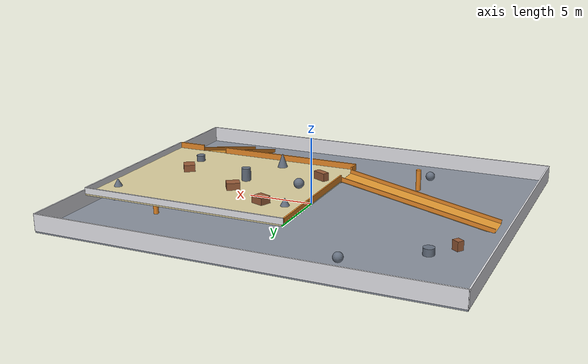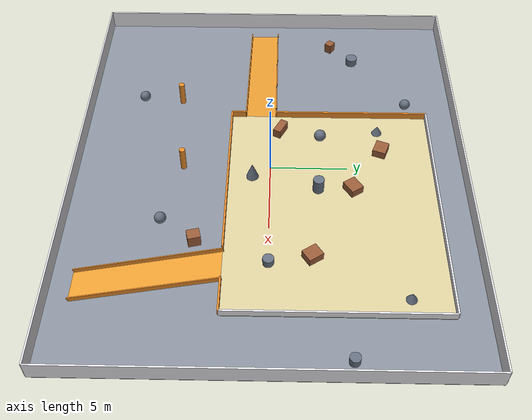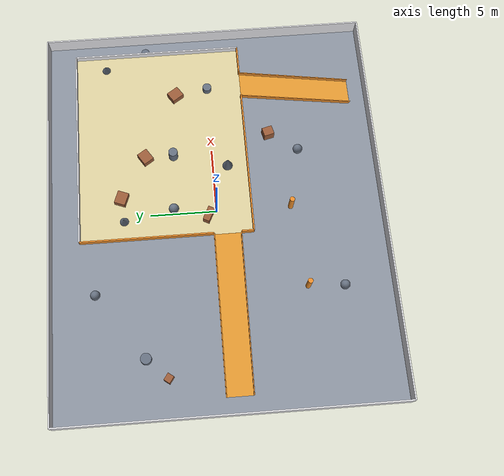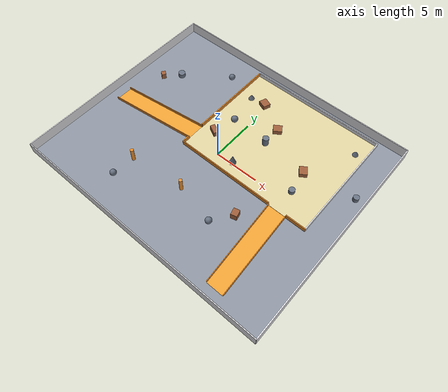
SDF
<?xml version='1.0' encoding='utf-8'?>
<sdf version="1.7">
  <world name="floor_5">
    <gravity>0 0 -9.8</gravity>
    <plugin name="gazebo_ros_state" filename="libgazebo_ros_state.so">
      <ros>
        <namespace>/gazebo</namespace>
      </ros>
    </plugin>
    <physics name="ode_physics" type="ode">
      <max_step_size>0.001</max_step_size>
      <real_time_factor>1</real_time_factor>
      <real_time_update_rate>1000</real_time_update_rate>
      <ode>
        <solver>
          <type>quick</type>
          <iters>150</iters>
          <sor>1.3</sor>
        </solver>
        <constraints>
          <cfm>0</cfm>
          <erp>0.2</erp>
          <contact_max_correcting_vel>0.2</contact_max_correcting_vel>
          <contact_surface_layer>0.001</contact_surface_layer>
        </constraints>
      </ode>
    </physics>
    <light name="sun" type="directional">
      <pose>0 0 28 0 0 0</pose>
      <diffuse>0.92 0.91 0.88 1</diffuse>
      <specular>0.18 0.18 0.16 1</specular>
      <direction>-0.35 -0.28 -0.9</direction>
      <cast_shadows>true</cast_shadows>
    </light>
    <light name="fill" type="point">
      <pose>0 0 4.5 0 0 0</pose>
      <diffuse>0.45 0.48 0.52 1</diffuse>
      <specular>0.02 0.02 0.02 1</specular>
      <cast_shadows>false</cast_shadows>
      <attenuation>
        <range>80</range>
        <constant>0.5</constant>
        <linear>0.02</linear>
      </attenuation>
    </light>
    <scene>
      <ambient>0.48 0.49 0.53 1</ambient>
      <background>0.72 0.77 0.84 1</background>
    </scene>
    <gui fullscreen="false">
      <camera name="user_camera">
        <pose>21 -22.5 25.5 0 0.65 2.2</pose>
        <view_controller>orbit</view_controller>
      </camera>
    </gui>
    <model name="floor_5_structure">
      <static>true</static>
      <link name="structure">
        <collision name="lower_collision">
          <pose>0 0 -0.0625 0 0 0</pose>
          <geometry>
            <box>
              <size>30 25 0.125</size>
            </box>
          </geometry>
          <max_contacts>40</max_contacts>
          <surface>
            <friction>
              <ode>
                <mu>2</mu>
                <mu2>2</mu2>
              </ode>
            </friction>
            <contact>
              <ode>
                <kp>1e7</kp>
                <kd>1000</kd>
                <max_vel>0.1</max_vel>
                <min_depth>0.001</min_depth>
              </ode>
            </contact>
          </surface>
        </collision>
        <visual name="lower_visual">
          <pose>0 0 -0.0625 0 0 0</pose>
          <geometry>
            <box>
              <size>30 25 0.125</size>
            </box>
          </geometry>
          <material>
            <ambient>0.54 0.57 0.62 1</ambient>
            <diffuse>0.54 0.57 0.62 1</diffuse>
          </material>
        </visual>
        <collision name="upper_collision">
          <pose>5 3.75 2.1875 0 0 0</pose>
          <geometry>
            <box>
              <size>15 12.5 0.125</size>
            </box>
          </geometry>
          <max_contacts>40</max_contacts>
          <surface>
            <friction>
              <ode>
                <mu>2</mu>
                <mu2>2</mu2>
              </ode>
            </friction>
            <contact>
              <ode>
                <kp>1e7</kp>
                <kd>1000</kd>
                <max_vel>0.1</max_vel>
                <min_depth>0.001</min_depth>
              </ode>
            </contact>
          </surface>
        </collision>
        <visual name="upper_visual">
          <pose>5 3.75 2.1875 0 0 0</pose>
          <geometry>
            <box>
              <size>15 12.5 0.125</size>
            </box>
          </geometry>
          <material>
            <ambient>0.86 0.81 0.62 1</ambient>
            <diffuse>0.86 0.81 0.62 1</diffuse>
          </material>
        </visual>
        <collision name="west_ramp_collision">
          <pose>-8.09837286 -0.625 1.06983647 0 -0.196862795 0</pose>
          <geometry>
            <box>
              <size>11.5034387 1.875 0.1125</size>
            </box>
          </geometry>
          <max_contacts>40</max_contacts>
          <surface>
            <friction>
              <ode>
                <mu>2</mu>
                <mu2>2</mu2>
              </ode>
            </friction>
            <contact>
              <ode>
                <kp>1e7</kp>
                <kd>1000</kd>
                <max_vel>0.1</max_vel>
                <min_depth>0.001</min_depth>
              </ode>
            </contact>
          </surface>
        </collision>
        <visual name="west_ramp_visual">
          <pose>-8.09837286 -0.625 1.06983647 0 -0.196862795 0</pose>
          <geometry>
            <box>
              <size>11.5034387 1.875 0.1125</size>
            </box>
          </geometry>
          <material>
            <ambient>0.92 0.62 0.20 1</ambient>
            <diffuse>0.92 0.62 0.20 1</diffuse>
          </material>
        </visual>
        <collision name="west_ramp_rail_-1_collision">
          <pose>-8.09837286 -1.6 1.24483647 0 -0.196862795 0</pose>
          <geometry>
            <box>
              <size>11.5034387 0.0625 0.3125</size>
            </box>
          </geometry>
          <max_contacts>40</max_contacts>
          <surface>
            <friction>
              <ode>
                <mu>2</mu>
                <mu2>2</mu2>
              </ode>
            </friction>
            <contact>
              <ode>
                <kp>1e7</kp>
                <kd>1000</kd>
                <max_vel>0.1</max_vel>
                <min_depth>0.001</min_depth>
              </ode>
            </contact>
          </surface>
        </collision>
        <visual name="west_ramp_rail_-1_visual">
          <pose>-8.09837286 -1.6 1.24483647 0 -0.196862795 0</pose>
          <geometry>
            <box>
              <size>11.5034387 0.0625 0.3125</size>
            </box>
          </geometry>
          <material>
            <ambient>0.92 0.55 0.16 1</ambient>
            <diffuse>0.92 0.55 0.16 1</diffuse>
          </material>
        </visual>
        <collision name="west_ramp_rail_1_collision">
          <pose>-8.09837286 0.35 1.24483647 0 -0.196862795 0</pose>
          <geometry>
            <box>
              <size>11.5034387 0.0625 0.3125</size>
            </box>
          </geometry>
          <max_contacts>40</max_contacts>
          <surface>
            <friction>
              <ode>
                <mu>2</mu>
                <mu2>2</mu2>
              </ode>
            </friction>
            <contact>
              <ode>
                <kp>1e7</kp>
                <kd>1000</kd>
                <max_vel>0.1</max_vel>
                <min_depth>0.001</min_depth>
              </ode>
            </contact>
          </surface>
        </collision>
        <visual name="west_ramp_rail_1_visual">
          <pose>-8.09837286 0.35 1.24483647 0 -0.196862795 0</pose>
          <geometry>
            <box>
              <size>11.5034387 0.0625 0.3125</size>
            </box>
          </geometry>
          <material>
            <ambient>0.92 0.55 0.16 1</ambient>
            <diffuse>0.92 0.55 0.16 1</diffuse>
          </material>
        </visual>
        <collision name="south_ramp_collision">
          <pose>9.375 -6.84541322 1.07051027 0 -0.250831439 1.57079633</pose>
          <geometry>
            <box>
              <size>9.06492424 1.875 0.1125</size>
            </box>
          </geometry>
          <max_contacts>40</max_contacts>
          <surface>
            <friction>
              <ode>
                <mu>2</mu>
                <mu2>2</mu2>
              </ode>
            </friction>
            <contact>
              <ode>
                <kp>1e7</kp>
                <kd>1000</kd>
                <max_vel>0.1</max_vel>
                <min_depth>0.001</min_depth>
              </ode>
            </contact>
          </surface>
        </collision>
        <visual name="south_ramp_visual">
          <pose>9.375 -6.84541322 1.07051027 0 -0.250831439 1.57079633</pose>
          <geometry>
            <box>
              <size>9.06492424 1.875 0.1125</size>
            </box>
          </geometry>
          <material>
            <ambient>0.92 0.62 0.20 1</ambient>
            <diffuse>0.92 0.62 0.20 1</diffuse>
          </material>
        </visual>
        <collision name="south_ramp_rail_-1_collision">
          <pose>10.35 -6.84541322 1.24551027 0 -0.250831439 1.57079633</pose>
          <geometry>
            <box>
              <size>9.06492424 0.0625 0.3125</size>
            </box>
          </geometry>
          <max_contacts>40</max_contacts>
          <surface>
            <friction>
              <ode>
                <mu>2</mu>
                <mu2>2</mu2>
              </ode>
            </friction>
            <contact>
              <ode>
                <kp>1e7</kp>
                <kd>1000</kd>
                <max_vel>0.1</max_vel>
                <min_depth>0.001</min_depth>
              </ode>
            </contact>
          </surface>
        </collision>
        <visual name="south_ramp_rail_-1_visual">
          <pose>10.35 -6.84541322 1.24551027 0 -0.250831439 1.57079633</pose>
          <geometry>
            <box>
              <size>9.06492424 0.0625 0.3125</size>
            </box>
          </geometry>
          <material>
            <ambient>0.92 0.55 0.16 1</ambient>
            <diffuse>0.92 0.55 0.16 1</diffuse>
          </material>
        </visual>
        <collision name="south_ramp_rail_1_collision">
          <pose>8.4 -6.84541322 1.24551027 0 -0.250831439 1.57079633</pose>
          <geometry>
            <box>
              <size>9.06492424 0.0625 0.3125</size>
            </box>
          </geometry>
          <max_contacts>40</max_contacts>
          <surface>
            <friction>
              <ode>
                <mu>2</mu>
                <mu2>2</mu2>
              </ode>
            </friction>
            <contact>
              <ode>
                <kp>1e7</kp>
                <kd>1000</kd>
                <max_vel>0.1</max_vel>
                <min_depth>0.001</min_depth>
              </ode>
            </contact>
          </surface>
        </collision>
        <visual name="south_ramp_rail_1_visual">
          <pose>8.4 -6.84541322 1.24551027 0 -0.250831439 1.57079633</pose>
          <geometry>
            <box>
              <size>9.06492424 0.0625 0.3125</size>
            </box>
          </geometry>
          <material>
            <ambient>0.92 0.55 0.16 1</ambient>
            <diffuse>0.92 0.55 0.16 1</diffuse>
          </material>
        </visual>
        <collision name="lower_pillar_0_collision">
          <pose>-6.25 -6.25 0.8125 0 0 0</pose>
          <geometry>
            <cylinder>
              <radius>0.1875</radius>
              <length>1.625</length>
            </cylinder>
          </geometry>
          <max_contacts>40</max_contacts>
          <surface>
            <friction>
              <ode>
                <mu>2</mu>
                <mu2>2</mu2>
              </ode>
            </friction>
            <contact>
              <ode>
                <kp>1e7</kp>
                <kd>1000</kd>
                <max_vel>0.1</max_vel>
                <min_depth>0.001</min_depth>
              </ode>
            </contact>
          </surface>
        </collision>
        <visual name="lower_pillar_0_visual">
          <pose>-6.25 -6.25 0.8125 0 0 0</pose>
          <geometry>
            <cylinder>
              <radius>0.1875</radius>
              <length>1.625</length>
            </cylinder>
          </geometry>
          <material>
            <ambient>0.92 0.55 0.16 1</ambient>
            <diffuse>0.92 0.55 0.16 1</diffuse>
          </material>
        </visual>
        <collision name="lower_pillar_1_collision">
          <pose>0 -5.625 0.8125 0 0 0</pose>
          <geometry>
            <cylinder>
              <radius>0.1875</radius>
              <length>1.625</length>
            </cylinder>
          </geometry>
          <max_contacts>40</max_contacts>
          <surface>
            <friction>
              <ode>
                <mu>2</mu>
                <mu2>2</mu2>
              </ode>
            </friction>
            <contact>
              <ode>
                <kp>1e7</kp>
                <kd>1000</kd>
                <max_vel>0.1</max_vel>
                <min_depth>0.001</min_depth>
              </ode>
            </contact>
          </surface>
        </collision>
        <visual name="lower_pillar_1_visual">
          <pose>0 -5.625 0.8125 0 0 0</pose>
          <geometry>
            <cylinder>
              <radius>0.1875</radius>
              <length>1.625</length>
            </cylinder>
          </geometry>
          <material>
            <ambient>0.92 0.55 0.16 1</ambient>
            <diffuse>0.92 0.55 0.16 1</diffuse>
          </material>
        </visual>
        <collision name="lower_pillar_2_collision">
          <pose>3.125 2.5 0.8125 0 0 0</pose>
          <geometry>
            <cylinder>
              <radius>0.1875</radius>
              <length>1.625</length>
            </cylinder>
          </geometry>
          <max_contacts>40</max_contacts>
          <surface>
            <friction>
              <ode>
                <mu>2</mu>
                <mu2>2</mu2>
              </ode>
            </friction>
            <contact>
              <ode>
                <kp>1e7</kp>
                <kd>1000</kd>
                <max_vel>0.1</max_vel>
                <min_depth>0.001</min_depth>
              </ode>
            </contact>
          </surface>
        </collision>
        <visual name="lower_pillar_2_visual">
          <pose>3.125 2.5 0.8125 0 0 0</pose>
          <geometry>
            <cylinder>
              <radius>0.1875</radius>
              <length>1.625</length>
            </cylinder>
          </geometry>
          <material>
            <ambient>0.92 0.55 0.16 1</ambient>
            <diffuse>0.92 0.55 0.16 1</diffuse>
          </material>
        </visual>
        <collision name="lower_pillar_3_collision">
          <pose>9.375 6.25 0.8125 0 0 0</pose>
          <geometry>
            <cylinder>
              <radius>0.1875</radius>
              <length>1.625</length>
            </cylinder>
          </geometry>
          <max_contacts>40</max_contacts>
          <surface>
            <friction>
              <ode>
                <mu>2</mu>
                <mu2>2</mu2>
              </ode>
            </friction>
            <contact>
              <ode>
                <kp>1e7</kp>
                <kd>1000</kd>
                <max_vel>0.1</max_vel>
                <min_depth>0.001</min_depth>
              </ode>
            </contact>
          </surface>
        </collision>
        <visual name="lower_pillar_3_visual">
          <pose>9.375 6.25 0.8125 0 0 0</pose>
          <geometry>
            <cylinder>
              <radius>0.1875</radius>
              <length>1.625</length>
            </cylinder>
          </geometry>
          <material>
            <ambient>0.92 0.55 0.16 1</ambient>
            <diffuse>0.92 0.55 0.16 1</diffuse>
          </material>
        </visual>
        <collision name="upper_machine_0_collision">
          <pose>3.75 5 2.5 0 0 0.581799015</pose>
          <geometry>
            <box>
              <size>0.9375 0.8125 0.5</size>
            </box>
          </geometry>
          <max_contacts>40</max_contacts>
          <surface>
            <friction>
              <ode>
                <mu>2</mu>
                <mu2>2</mu2>
              </ode>
            </friction>
            <contact>
              <ode>
                <kp>1e7</kp>
                <kd>1000</kd>
                <max_vel>0.1</max_vel>
                <min_depth>0.001</min_depth>
              </ode>
            </contact>
          </surface>
        </collision>
        <visual name="upper_machine_0_visual">
          <pose>3.75 5 2.5 0 0 0.581799015</pose>
          <geometry>
            <box>
              <size>0.9375 0.8125 0.5</size>
            </box>
          </geometry>
          <material>
            <ambient>0.60 0.36 0.22 1</ambient>
            <diffuse>0.60 0.36 0.22 1</diffuse>
          </material>
        </visual>
        <collision name="upper_machine_1_collision">
          <pose>8.75 2.5 2.5 0 0 -0.985558806</pose>
          <geometry>
            <box>
              <size>0.9375 0.8125 0.5</size>
            </box>
          </geometry>
          <max_contacts>40</max_contacts>
          <surface>
            <friction>
              <ode>
                <mu>2</mu>
                <mu2>2</mu2>
              </ode>
            </friction>
            <contact>
              <ode>
                <kp>1e7</kp>
                <kd>1000</kd>
                <max_vel>0.1</max_vel>
                <min_depth>0.001</min_depth>
              </ode>
            </contact>
          </surface>
        </collision>
        <visual name="upper_machine_1_visual">
          <pose>8.75 2.5 2.5 0 0 -0.985558806</pose>
          <geometry>
            <box>
              <size>0.9375 0.8125 0.5</size>
            </box>
          </geometry>
          <material>
            <ambient>0.60 0.36 0.22 1</ambient>
            <diffuse>0.60 0.36 0.22 1</diffuse>
          </material>
        </visual>
        <collision name="upper_machine_2_collision">
          <pose>0.625 6.875 2.5 0 0 -0.364135324</pose>
          <geometry>
            <box>
              <size>0.9375 0.8125 0.5</size>
            </box>
          </geometry>
          <max_contacts>40</max_contacts>
          <surface>
            <friction>
              <ode>
                <mu>2</mu>
                <mu2>2</mu2>
              </ode>
            </friction>
            <contact>
              <ode>
                <kp>1e7</kp>
                <kd>1000</kd>
                <max_vel>0.1</max_vel>
                <min_depth>0.001</min_depth>
              </ode>
            </contact>
          </surface>
        </collision>
        <visual name="upper_machine_2_visual">
          <pose>0.625 6.875 2.5 0 0 -0.364135324</pose>
          <geometry>
            <box>
              <size>0.9375 0.8125 0.5</size>
            </box>
          </geometry>
          <material>
            <ambient>0.60 0.36 0.22 1</ambient>
            <diffuse>0.60 0.36 0.22 1</diffuse>
          </material>
        </visual>
        <collision name="upper_rail_1_collision">
          <pose>12.5 3.75 2.46875 0 0 1.57079633</pose>
          <geometry>
            <box>
              <size>12.5 0.1 0.4375</size>
            </box>
          </geometry>
          <max_contacts>40</max_contacts>
          <surface>
            <friction>
              <ode>
                <mu>2</mu>
                <mu2>2</mu2>
              </ode>
            </friction>
            <contact>
              <ode>
                <kp>1e7</kp>
                <kd>1000</kd>
                <max_vel>0.1</max_vel>
                <min_depth>0.001</min_depth>
              </ode>
            </contact>
          </surface>
        </collision>
        <visual name="upper_rail_1_visual">
          <pose>12.5 3.75 2.46875 0 0 1.57079633</pose>
          <geometry>
            <box>
              <size>12.5 0.1 0.4375</size>
            </box>
          </geometry>
          <material>
            <ambient>0.91 0.91 0.93 1</ambient>
            <diffuse>0.91 0.91 0.93 1</diffuse>
          </material>
        </visual>
        <collision name="upper_rail_2_collision">
          <pose>5 10 2.46875 0 0 3.14159265</pose>
          <geometry>
            <box>
              <size>15 0.1 0.4375</size>
            </box>
          </geometry>
          <max_contacts>40</max_contacts>
          <surface>
            <friction>
              <ode>
                <mu>2</mu>
                <mu2>2</mu2>
              </ode>
            </friction>
            <contact>
              <ode>
                <kp>1e7</kp>
                <kd>1000</kd>
                <max_vel>0.1</max_vel>
                <min_depth>0.001</min_depth>
              </ode>
            </contact>
          </surface>
        </collision>
        <visual name="upper_rail_2_visual">
          <pose>5 10 2.46875 0 0 3.14159265</pose>
          <geometry>
            <box>
              <size>15 0.1 0.4375</size>
            </box>
          </geometry>
          <material>
            <ambient>0.91 0.91 0.93 1</ambient>
            <diffuse>0.91 0.91 0.93 1</diffuse>
          </material>
        </visual>
        <collision name="west_lower_rail_collision">
          <pose>-2.5 -2.0625 2.46875 0 0 0</pose>
          <geometry>
            <box>
              <size>0.1 0.875 0.4375</size>
            </box>
          </geometry>
          <max_contacts>40</max_contacts>
          <surface>
            <friction>
              <ode>
                <mu>2</mu>
                <mu2>2</mu2>
              </ode>
            </friction>
            <contact>
              <ode>
                <kp>1e7</kp>
                <kd>1000</kd>
                <max_vel>0.1</max_vel>
                <min_depth>0.001</min_depth>
              </ode>
            </contact>
          </surface>
        </collision>
        <visual name="west_lower_rail_visual">
          <pose>-2.5 -2.0625 2.46875 0 0 0</pose>
          <geometry>
            <box>
              <size>0.1 0.875 0.4375</size>
            </box>
          </geometry>
          <material>
            <ambient>0.92 0.55 0.16 1</ambient>
            <diffuse>0.92 0.55 0.16 1</diffuse>
          </material>
        </visual>
        <collision name="west_upper_rail_collision">
          <pose>-2.5 5.1875 2.46875 0 0 0</pose>
          <geometry>
            <box>
              <size>0.1 9.625 0.4375</size>
            </box>
          </geometry>
          <max_contacts>40</max_contacts>
          <surface>
            <friction>
              <ode>
                <mu>2</mu>
                <mu2>2</mu2>
              </ode>
            </friction>
            <contact>
              <ode>
                <kp>1e7</kp>
                <kd>1000</kd>
                <max_vel>0.1</max_vel>
                <min_depth>0.001</min_depth>
              </ode>
            </contact>
          </surface>
        </collision>
        <visual name="west_upper_rail_visual">
          <pose>-2.5 5.1875 2.46875 0 0 0</pose>
          <geometry>
            <box>
              <size>0.1 9.625 0.4375</size>
            </box>
          </geometry>
          <material>
            <ambient>0.92 0.55 0.16 1</ambient>
            <diffuse>0.92 0.55 0.16 1</diffuse>
          </material>
        </visual>
        <collision name="south_left_rail_collision">
          <pose>2.9375 -2.5 2.46875 0 0 0</pose>
          <geometry>
            <box>
              <size>10.875 0.1 0.4375</size>
            </box>
          </geometry>
          <max_contacts>40</max_contacts>
          <surface>
            <friction>
              <ode>
                <mu>2</mu>
                <mu2>2</mu2>
              </ode>
            </friction>
            <contact>
              <ode>
                <kp>1e7</kp>
                <kd>1000</kd>
                <max_vel>0.1</max_vel>
                <min_depth>0.001</min_depth>
              </ode>
            </contact>
          </surface>
        </collision>
        <visual name="south_left_rail_visual">
          <pose>2.9375 -2.5 2.46875 0 0 0</pose>
          <geometry>
            <box>
              <size>10.875 0.1 0.4375</size>
            </box>
          </geometry>
          <material>
            <ambient>0.92 0.55 0.16 1</ambient>
            <diffuse>0.92 0.55 0.16 1</diffuse>
          </material>
        </visual>
        <collision name="south_right_rail_collision">
          <pose>11.4375 -2.5 2.46875 0 0 0</pose>
          <geometry>
            <box>
              <size>2.125 0.1 0.4375</size>
            </box>
          </geometry>
          <max_contacts>40</max_contacts>
          <surface>
            <friction>
              <ode>
                <mu>2</mu>
                <mu2>2</mu2>
              </ode>
            </friction>
            <contact>
              <ode>
                <kp>1e7</kp>
                <kd>1000</kd>
                <max_vel>0.1</max_vel>
                <min_depth>0.001</min_depth>
              </ode>
            </contact>
          </surface>
        </collision>
        <visual name="south_right_rail_visual">
          <pose>11.4375 -2.5 2.46875 0 0 0</pose>
          <geometry>
            <box>
              <size>2.125 0.1 0.4375</size>
            </box>
          </geometry>
          <material>
            <ambient>0.92 0.55 0.16 1</ambient>
            <diffuse>0.92 0.55 0.16 1</diffuse>
          </material>
        </visual>
        <collision name="boundary_0_collision">
          <pose>0 -12.5 0.625 0 0 0</pose>
          <geometry>
            <box>
              <size>30 0.1 1.25</size>
            </box>
          </geometry>
          <max_contacts>40</max_contacts>
          <surface>
            <friction>
              <ode>
                <mu>2</mu>
                <mu2>2</mu2>
              </ode>
            </friction>
            <contact>
              <ode>
                <kp>1e7</kp>
                <kd>1000</kd>
                <max_vel>0.1</max_vel>
                <min_depth>0.001</min_depth>
              </ode>
            </contact>
          </surface>
        </collision>
        <visual name="boundary_0_visual">
          <pose>0 -12.5 0.625 0 0 0</pose>
          <geometry>
            <box>
              <size>30 0.1 1.25</size>
            </box>
          </geometry>
          <material>
            <ambient>0.91 0.91 0.93 1</ambient>
            <diffuse>0.91 0.91 0.93 1</diffuse>
          </material>
        </visual>
        <collision name="boundary_1_collision">
          <pose>15 0 0.625 0 0 1.57079633</pose>
          <geometry>
            <box>
              <size>25 0.1 1.25</size>
            </box>
          </geometry>
          <max_contacts>40</max_contacts>
          <surface>
            <friction>
              <ode>
                <mu>2</mu>
                <mu2>2</mu2>
              </ode>
            </friction>
            <contact>
              <ode>
                <kp>1e7</kp>
                <kd>1000</kd>
                <max_vel>0.1</max_vel>
                <min_depth>0.001</min_depth>
              </ode>
            </contact>
          </surface>
        </collision>
        <visual name="boundary_1_visual">
          <pose>15 0 0.625 0 0 1.57079633</pose>
          <geometry>
            <box>
              <size>25 0.1 1.25</size>
            </box>
          </geometry>
          <material>
            <ambient>0.91 0.91 0.93 1</ambient>
            <diffuse>0.91 0.91 0.93 1</diffuse>
          </material>
        </visual>
        <collision name="boundary_2_collision">
          <pose>0 12.5 0.625 0 0 3.14159265</pose>
          <geometry>
            <box>
              <size>30 0.1 1.25</size>
            </box>
          </geometry>
          <max_contacts>40</max_contacts>
          <surface>
            <friction>
              <ode>
                <mu>2</mu>
                <mu2>2</mu2>
              </ode>
            </friction>
            <contact>
              <ode>
                <kp>1e7</kp>
                <kd>1000</kd>
                <max_vel>0.1</max_vel>
                <min_depth>0.001</min_depth>
              </ode>
            </contact>
          </surface>
        </collision>
        <visual name="boundary_2_visual">
          <pose>0 12.5 0.625 0 0 3.14159265</pose>
          <geometry>
            <box>
              <size>30 0.1 1.25</size>
            </box>
          </geometry>
          <material>
            <ambient>0.91 0.91 0.93 1</ambient>
            <diffuse>0.91 0.91 0.93 1</diffuse>
          </material>
        </visual>
        <collision name="boundary_3_collision">
          <pose>-15 0 0.625 0 0 -1.57079633</pose>
          <geometry>
            <box>
              <size>25 0.1 1.25</size>
            </box>
          </geometry>
          <max_contacts>40</max_contacts>
          <surface>
            <friction>
              <ode>
                <mu>2</mu>
                <mu2>2</mu2>
              </ode>
            </friction>
            <contact>
              <ode>
                <kp>1e7</kp>
                <kd>1000</kd>
                <max_vel>0.1</max_vel>
                <min_depth>0.001</min_depth>
              </ode>
            </contact>
          </surface>
        </collision>
        <visual name="boundary_3_visual">
          <pose>-15 0 0.625 0 0 -1.57079633</pose>
          <geometry>
            <box>
              <size>25 0.1 1.25</size>
            </box>
          </geometry>
          <material>
            <ambient>0.91 0.91 0.93 1</ambient>
            <diffuse>0.91 0.91 0.93 1</diffuse>
          </material>
        </visual>
        <collision name="irregular_prop_0_collision">
          <pose>-1.07402365 0.640469305 2.53867929 0 0 -0.469066281</pose>
          <geometry>
            <box>
              <size>1.06392058 0.493232458 0.577358582</size>
            </box>
          </geometry>
          <max_contacts>40</max_contacts>
          <surface>
            <friction>
              <ode>
                <mu>2</mu>
                <mu2>2</mu2>
              </ode>
            </friction>
            <contact>
              <ode>
                <kp>1e7</kp>
                <kd>1000</kd>
                <max_vel>0.1</max_vel>
                <min_depth>0.001</min_depth>
              </ode>
            </contact>
          </surface>
        </collision>
        <visual name="irregular_prop_0_visual">
          <pose>-1.07402365 0.640469305 2.53867929 0 0 -0.469066281</pose>
          <geometry>
            <box>
              <size>1.06392058 0.493232458 0.577358582</size>
            </box>
          </geometry>
          <material>
            <ambient>0.60 0.36 0.22 1</ambient>
            <diffuse>0.60 0.36 0.22 1</diffuse>
          </material>
        </visual>
        <collision name="irregular_prop_1_collision">
          <pose>13.8847708 4.73931585 0.263277963 0 0 -1.68251964</pose>
          <geometry>
            <cylinder>
              <radius>0.3195704872681185</radius>
              <length>0.5265559263608273</length>
            </cylinder>
          </geometry>
          <max_contacts>40</max_contacts>
          <surface>
            <friction>
              <ode>
                <mu>2</mu>
                <mu2>2</mu2>
              </ode>
            </friction>
            <contact>
              <ode>
                <kp>1e7</kp>
                <kd>1000</kd>
                <max_vel>0.1</max_vel>
                <min_depth>0.001</min_depth>
              </ode>
            </contact>
          </surface>
        </collision>
        <visual name="irregular_prop_1_visual">
          <pose>13.8847708 4.73931585 0.263277963 0 0 -1.68251964</pose>
          <geometry>
            <cylinder>
              <radius>0.3195704872681185</radius>
              <length>0.5265559263608273</length>
            </cylinder>
          </geometry>
          <material>
            <ambient>0.40 0.44 0.50 1</ambient>
            <diffuse>0.40 0.44 0.50 1</diffuse>
          </material>
        </visual>
        <collision name="irregular_prop_2_collision">
          <pose>4.55612648 -6.629242 0.365869383 0 0 1.47877176</pose>
          <geometry>
            <sphere>
              <radius>0.36586938344009734</radius>
            </sphere>
          </geometry>
          <max_contacts>40</max_contacts>
          <surface>
            <friction>
              <ode>
                <mu>2</mu>
                <mu2>2</mu2>
              </ode>
            </friction>
            <contact>
              <ode>
                <kp>1e7</kp>
                <kd>1000</kd>
                <max_vel>0.1</max_vel>
                <min_depth>0.001</min_depth>
              </ode>
            </contact>
          </surface>
        </collision>
        <visual name="irregular_prop_2_visual">
          <pose>4.55612648 -6.629242 0.365869383 0 0 1.47877176</pose>
          <geometry>
            <sphere>
              <radius>0.36586938344009734</radius>
            </sphere>
          </geometry>
          <material>
            <ambient>0.40 0.44 0.50 1</ambient>
            <diffuse>0.40 0.44 0.50 1</diffuse>
          </material>
        </visual>
        <collision name="irregular_prop_3_collision">
          <pose>0 0 0 0 0 0</pose>
          <geometry>
            <mesh>
              <uri>3DModel/floor/surfaces/floor_5_irregular_prop_3.stl</uri>
            </mesh>
          </geometry>
          <max_contacts>40</max_contacts>
          <surface>
            <friction>
              <ode>
                <mu>8</mu>
                <mu2>8</mu2>
              </ode>
            </friction>
            <contact>
              <ode>
                <kp>1e7</kp>
                <kd>1000</kd>
                <max_vel>0.1</max_vel>
                <min_depth>0.001</min_depth>
              </ode>
            </contact>
          </surface>
        </collision>
        <visual name="irregular_prop_3_visual">
          <pose>0 0 0 0 0 0</pose>
          <geometry>
            <mesh>
              <uri>3DModel/floor/surfaces/floor_5_irregular_prop_3.stl</uri>
            </mesh>
          </geometry>
          <material>
            <ambient>0.40 0.44 0.50 1</ambient>
            <diffuse>0.40 0.44 0.50 1</diffuse>
          </material>
        </visual>
        <collision name="irregular_prop_4_collision">
          <pose>10.2365741 1.53308153 0.362008473 0 0 2.99072187</pose>
          <geometry>
            <box>
              <size>1.03904313 0.60603587 0.724016947</size>
            </box>
          </geometry>
          <max_contacts>40</max_contacts>
          <surface>
            <friction>
              <ode>
                <mu>2</mu>
                <mu2>2</mu2>
              </ode>
            </friction>
            <contact>
              <ode>
                <kp>1e7</kp>
                <kd>1000</kd>
                <max_vel>0.1</max_vel>
                <min_depth>0.001</min_depth>
              </ode>
            </contact>
          </surface>
        </collision>
        <visual name="irregular_prop_4_visual">
          <pose>10.2365741 1.53308153 0.362008473 0 0 2.99072187</pose>
          <geometry>
            <box>
              <size>1.03904313 0.60603587 0.724016947</size>
            </box>
          </geometry>
          <material>
            <ambient>0.60 0.36 0.22 1</ambient>
            <diffuse>0.60 0.36 0.22 1</diffuse>
          </material>
        </visual>
        <collision name="irregular_prop_5_collision">
          <pose>3.7772719 2.93648605 2.70951989 0 0 1.33382023</pose>
          <geometry>
            <cylinder>
              <radius>0.33276737030169834</radius>
              <length>0.9190397859967392</length>
            </cylinder>
          </geometry>
          <max_contacts>40</max_contacts>
          <surface>
            <friction>
              <ode>
                <mu>2</mu>
                <mu2>2</mu2>
              </ode>
            </friction>
            <contact>
              <ode>
                <kp>1e7</kp>
                <kd>1000</kd>
                <max_vel>0.1</max_vel>
                <min_depth>0.001</min_depth>
              </ode>
            </contact>
          </surface>
        </collision>
        <visual name="irregular_prop_5_visual">
          <pose>3.7772719 2.93648605 2.70951989 0 0 1.33382023</pose>
          <geometry>
            <cylinder>
              <radius>0.33276737030169834</radius>
              <length>0.9190397859967392</length>
            </cylinder>
          </geometry>
          <material>
            <ambient>0.40 0.44 0.50 1</ambient>
            <diffuse>0.40 0.44 0.50 1</diffuse>
          </material>
        </visual>
        <collision name="irregular_prop_6_collision">
          <pose>-6.42112529 -8.9135325 0.358935685 0 0 -2.11806441</pose>
          <geometry>
            <sphere>
              <radius>0.35893568490197614</radius>
            </sphere>
          </geometry>
          <max_contacts>40</max_contacts>
          <surface>
            <friction>
              <ode>
                <mu>2</mu>
                <mu2>2</mu2>
              </ode>
            </friction>
            <contact>
              <ode>
                <kp>1e7</kp>
                <kd>1000</kd>
                <max_vel>0.1</max_vel>
                <min_depth>0.001</min_depth>
              </ode>
            </contact>
          </surface>
        </collision>
        <visual name="irregular_prop_6_visual">
          <pose>-6.42112529 -8.9135325 0.358935685 0 0 -2.11806441</pose>
          <geometry>
            <sphere>
              <radius>0.35893568490197614</radius>
            </sphere>
          </geometry>
          <material>
            <ambient>0.40 0.44 0.50 1</ambient>
            <diffuse>0.40 0.44 0.50 1</diffuse>
          </material>
        </visual>
        <collision name="irregular_prop_7_collision">
          <pose>0 0 0 0 0 0</pose>
          <geometry>
            <mesh>
              <uri>3DModel/floor/surfaces/floor_5_irregular_prop_7.stl</uri>
            </mesh>
          </geometry>
          <max_contacts>40</max_contacts>
          <surface>
            <friction>
              <ode>
                <mu>8</mu>
                <mu2>8</mu2>
              </ode>
            </friction>
            <contact>
              <ode>
                <kp>1e7</kp>
                <kd>1000</kd>
                <max_vel>0.1</max_vel>
                <min_depth>0.001</min_depth>
              </ode>
            </contact>
          </surface>
        </collision>
        <visual name="irregular_prop_7_visual">
          <pose>0 0 0 0 0 0</pose>
          <geometry>
            <mesh>
              <uri>3DModel/floor/surfaces/floor_5_irregular_prop_7.stl</uri>
            </mesh>
          </geometry>
          <material>
            <ambient>0.40 0.44 0.50 1</ambient>
            <diffuse>0.40 0.44 0.50 1</diffuse>
          </material>
        </visual>
        <collision name="irregular_prop_8_collision">
          <pose>-12.1924421 4.25960142 0.341812057 0 0 0.944271216</pose>
          <geometry>
            <box>
              <size>0.505954476 0.569474736 0.683624114</size>
            </box>
          </geometry>
          <max_contacts>40</max_contacts>
          <surface>
            <friction>
              <ode>
                <mu>2</mu>
                <mu2>2</mu2>
              </ode>
            </friction>
            <contact>
              <ode>
                <kp>1e7</kp>
                <kd>1000</kd>
                <max_vel>0.1</max_vel>
                <min_depth>0.001</min_depth>
              </ode>
            </contact>
          </surface>
        </collision>
        <visual name="irregular_prop_8_visual">
          <pose>-12.1924421 4.25960142 0.341812057 0 0 0.944271216</pose>
          <geometry>
            <box>
              <size>0.505954476 0.569474736 0.683624114</size>
            </box>
          </geometry>
          <material>
            <ambient>0.60 0.36 0.22 1</ambient>
            <diffuse>0.60 0.36 0.22 1</diffuse>
          </material>
        </visual>
        <collision name="irregular_prop_9_collision">
          <pose>-10.7089255 5.80693378 0.261907289 0 0 -1.54051949</pose>
          <geometry>
            <cylinder>
              <radius>0.39850075395055395</radius>
              <length>0.5238145778927927</length>
            </cylinder>
          </geometry>
          <max_contacts>40</max_contacts>
          <surface>
            <friction>
              <ode>
                <mu>2</mu>
                <mu2>2</mu2>
              </ode>
            </friction>
            <contact>
              <ode>
                <kp>1e7</kp>
                <kd>1000</kd>
                <max_vel>0.1</max_vel>
                <min_depth>0.001</min_depth>
              </ode>
            </contact>
          </surface>
        </collision>
        <visual name="irregular_prop_9_visual">
          <pose>-10.7089255 5.80693378 0.261907289 0 0 -1.54051949</pose>
          <geometry>
            <cylinder>
              <radius>0.39850075395055395</radius>
              <length>0.5238145778927927</length>
            </cylinder>
          </geometry>
          <material>
            <ambient>0.40 0.44 0.50 1</ambient>
            <diffuse>0.40 0.44 0.50 1</diffuse>
          </material>
        </visual>
        <collision name="irregular_prop_10_collision">
          <pose>-0.441588661 3.1311413 2.61764306 0 0 -2.49631116</pose>
          <geometry>
            <sphere>
              <radius>0.36764306289235515</radius>
            </sphere>
          </geometry>
          <max_contacts>40</max_contacts>
          <surface>
            <friction>
              <ode>
                <mu>2</mu>
                <mu2>2</mu2>
              </ode>
            </friction>
            <contact>
              <ode>
                <kp>1e7</kp>
                <kd>1000</kd>
                <max_vel>0.1</max_vel>
                <min_depth>0.001</min_depth>
              </ode>
            </contact>
          </surface>
        </collision>
        <visual name="irregular_prop_10_visual">
          <pose>-0.441588661 3.1311413 2.61764306 0 0 -2.49631116</pose>
          <geometry>
            <sphere>
              <radius>0.36764306289235515</radius>
            </sphere>
          </geometry>
          <material>
            <ambient>0.40 0.44 0.50 1</ambient>
            <diffuse>0.40 0.44 0.50 1</diffuse>
          </material>
        </visual>
        <collision name="irregular_prop_11_collision">
          <pose>0 0 0 0 0 0</pose>
          <geometry>
            <mesh>
              <uri>3DModel/floor/surfaces/floor_5_irregular_prop_11.stl</uri>
            </mesh>
          </geometry>
          <max_contacts>40</max_contacts>
          <surface>
            <friction>
              <ode>
                <mu>8</mu>
                <mu2>8</mu2>
              </ode>
            </friction>
            <contact>
              <ode>
                <kp>1e7</kp>
                <kd>1000</kd>
                <max_vel>0.1</max_vel>
                <min_depth>0.001</min_depth>
              </ode>
            </contact>
          </surface>
        </collision>
        <visual name="irregular_prop_11_visual">
          <pose>0 0 0 0 0 0</pose>
          <geometry>
            <mesh>
              <uri>3DModel/floor/surfaces/floor_5_irregular_prop_11.stl</uri>
            </mesh>
          </geometry>
          <material>
            <ambient>0.40 0.44 0.50 1</ambient>
            <diffuse>0.40 0.44 0.50 1</diffuse>
          </material>
        </visual>
        <collision name="irregular_prop_12_collision">
          <pose>6.06992004 -4.45814384 0.39584845 0 0 -2.89523204</pose>
          <geometry>
            <box>
              <size>0.687002905 0.787789886 0.791696901</size>
            </box>
          </geometry>
          <max_contacts>40</max_contacts>
          <surface>
            <friction>
              <ode>
                <mu>2</mu>
                <mu2>2</mu2>
              </ode>
            </friction>
            <contact>
              <ode>
                <kp>1e7</kp>
                <kd>1000</kd>
                <max_vel>0.1</max_vel>
                <min_depth>0.001</min_depth>
              </ode>
            </contact>
          </surface>
        </collision>
        <visual name="irregular_prop_12_visual">
          <pose>6.06992004 -4.45814384 0.39584845 0 0 -2.89523204</pose>
          <geometry>
            <box>
              <size>0.687002905 0.787789886 0.791696901</size>
            </box>
          </geometry>
          <material>
            <ambient>0.60 0.36 0.22 1</ambient>
            <diffuse>0.60 0.36 0.22 1</diffuse>
          </material>
        </visual>
        <collision name="irregular_prop_13_collision">
          <pose>9.17667142 0.0563098741 2.47693331 0 0 -2.94753075</pose>
          <geometry>
            <cylinder>
              <radius>0.3188577049030762</radius>
              <length>0.45386662125650123</length>
            </cylinder>
          </geometry>
          <max_contacts>40</max_contacts>
          <surface>
            <friction>
              <ode>
                <mu>2</mu>
                <mu2>2</mu2>
              </ode>
            </friction>
            <contact>
              <ode>
                <kp>1e7</kp>
                <kd>1000</kd>
                <max_vel>0.1</max_vel>
                <min_depth>0.001</min_depth>
              </ode>
            </contact>
          </surface>
        </collision>
        <visual name="irregular_prop_13_visual">
          <pose>9.17667142 0.0563098741 2.47693331 0 0 -2.94753075</pose>
          <geometry>
            <cylinder>
              <radius>0.3188577049030762</radius>
              <length>0.45386662125650123</length>
            </cylinder>
          </geometry>
          <material>
            <ambient>0.40 0.44 0.50 1</ambient>
            <diffuse>0.40 0.44 0.50 1</diffuse>
          </material>
        </visual>
        <collision name="irregular_prop_14_collision">
          <pose>-5.87892114 9.27310261 0.357404959 0 0 -2.90874516</pose>
          <geometry>
            <sphere>
              <radius>0.35740495885167956</radius>
            </sphere>
          </geometry>
          <max_contacts>40</max_contacts>
          <surface>
            <friction>
              <ode>
                <mu>2</mu>
                <mu2>2</mu2>
              </ode>
            </friction>
            <contact>
              <ode>
                <kp>1e7</kp>
                <kd>1000</kd>
                <max_vel>0.1</max_vel>
                <min_depth>0.001</min_depth>
              </ode>
            </contact>
          </surface>
        </collision>
        <visual name="irregular_prop_14_visual">
          <pose>-5.87892114 9.27310261 0.357404959 0 0 -2.90874516</pose>
          <geometry>
            <sphere>
              <radius>0.35740495885167956</radius>
            </sphere>
          </geometry>
          <material>
            <ambient>0.40 0.44 0.50 1</ambient>
            <diffuse>0.40 0.44 0.50 1</diffuse>
          </material>
        </visual>
      </link>
    </model>
  </world>
</sdf>
